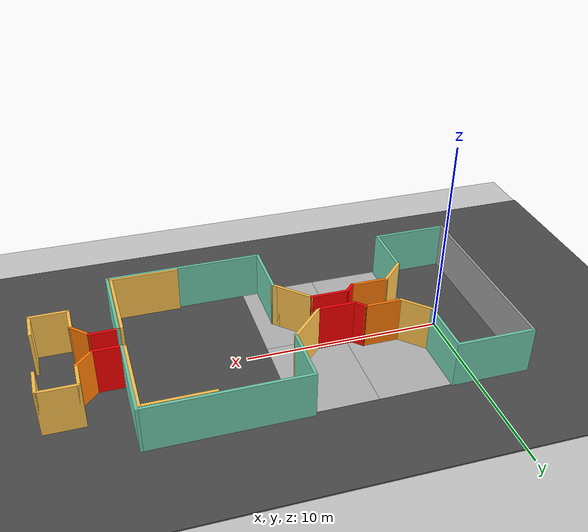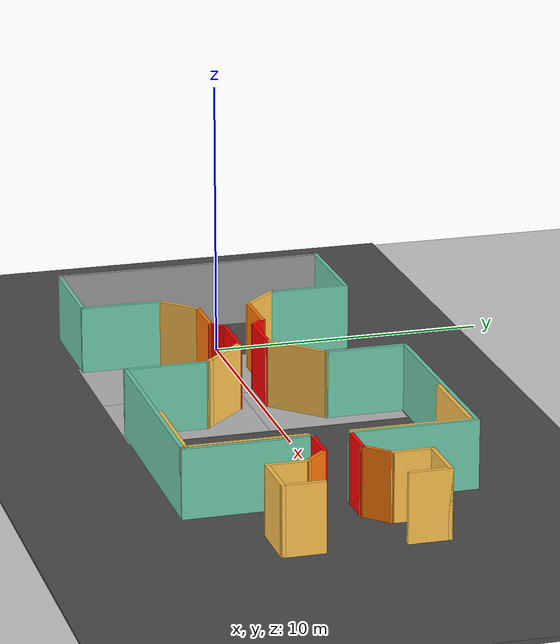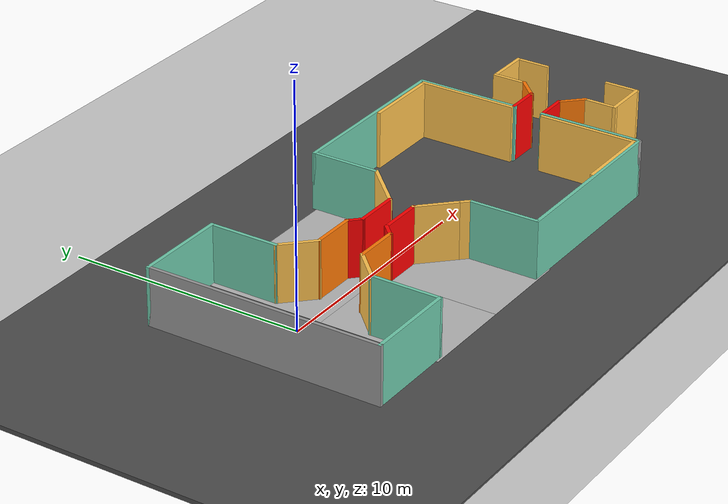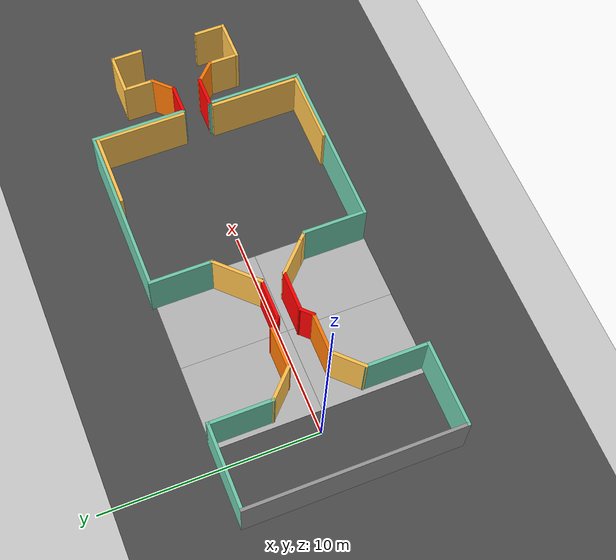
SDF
<sdf version="1.6">
 <world name="default">
  <light name="sun" type="directional">
   <pose>0 0 10 0 -0 0</pose>
   <diffuse>0.8 0.8 0.8 1</diffuse>
   <specular>0.2 0.2 0.2 1</specular>
   <attenuation>
    <range>1000</range>
    <constant>0.9</constant>
    <linear>0.01</linear>
    <quadratic>0.001</quadratic>
   </attenuation>
   <direction>-0.5 0.1 -0.9</direction>
  </light>
  <model name="ground_plane">
   <static>1</static>
   <link name="link">
    <collision name="collision">
     <geometry><plane><normal>0 0 1</normal><size>100 100</size></plane></geometry>
     <surface><friction><ode><mu>100</mu><mu2>50</mu2></ode></friction></surface>
    </collision>
    <visual name="visual">
     <cast_shadows>0</cast_shadows>
     <geometry><plane><normal>0 0 1</normal><size>100 100</size></plane></geometry>
     <material>
      <script><uri>file://media/materials/scripts/gazebo.material</uri><name>Gazebo/Grey</name></script>
     </material>
    </visual>
   </link>
  </model>
  <gravity>0 0 -9.8</gravity>
  <magnetic_field>6e-06 2.3e-05 -4.2e-05</magnetic_field>
  <atmosphere type="adiabatic"/>
  <physics name="default_physics" default="0" type="ode">
   <max_step_size>0.001</max_step_size>
   <real_time_factor>1</real_time_factor>
   <real_time_update_rate>1000</real_time_update_rate>
  </physics>
  <scene><ambient>0.4 0.4 0.4 1</ambient><background>0.7 0.7 0.7 1</background><shadows>1</shadows></scene>
  <spherical_coordinates>
   <surface_model>EARTH_WGS84</surface_model>
   <latitude_deg>0</latitude_deg>
   <longitude_deg>0</longitude_deg>
   <elevation>0</elevation>
   <heading_deg>0</heading_deg>
  </spherical_coordinates>
  <model name="exp1.sdf">
   <pose>8.65616 -0.294528 0 0 -0 0</pose>
   <link name="Wall_1">
    <collision name="Wall_1_Collision">
     <geometry><box><size>10 0.15 2.5</size></box></geometry>
     <pose>0 0 1.25 0 -0 0</pose>
    </collision>
    <visual name="Wall_1_Visual">
     <pose>0 0 1.25 0 -0 0</pose>
     <geometry><box><size>10 0.15 2.5</size></box></geometry>
     <material>
      <script><uri>file://media/materials/scripts/gazebo.material</uri><name>Gazebo/Grey</name></script>
      <ambient>1 1 1 1</ambient>
     </material>
     <meta><layer>0</layer></meta>
    </visual>
    <pose>-11.2976 -0.037824 0 0 0 -1.5708</pose>
   </link>
   <link name="Wall_10">
    <collision name="Wall_10_Collision">
     <geometry><box><size>3.03042 0.15 2.5</size></box></geometry>
     <pose>0 0 1.25 0 -0 0</pose>
    </collision>
    <visual name="Wall_10_Visual">
     <pose>0 0 1.25 0 -0 0</pose>
     <geometry><box><size>3.03042 0.15 2.5</size></box></geometry>
     <material>
      <script><uri>file://media/materials/scripts/gazebo.material</uri><name>Gazebo/Grey</name></script>
      <ambient>0.435294 0.796078 0.67451 1</ambient>
     </material>
     <meta><layer>0</layer></meta>
    </visual>
    <pose>-0.636307 -3.55303 0 0 0 -1.5708</pose>
   </link>
   <link name="Wall_12">
    <collision name="Wall_12_Collision">
     <geometry><box><size>4 0.15 2.5</size></box></geometry>
     <pose>0 0 1.25 0 -0 0</pose>
    </collision>
    <visual name="Wall_12_Visual">
     <pose>0 0 1.25 0 -0 0</pose>
     <geometry><box><size>4 0.15 2.5</size></box></geometry>
     <material>
      <script><uri>file://media/materials/scripts/gazebo.material</uri><name>Gazebo/Grey</name></script>
      <ambient>0.435294 0.796078 0.67451 1</ambient>
     </material>
     <meta><layer>0</layer></meta>
    </visual>
    <pose>-9.37258 4.88718 0 0 -0 0</pose>
   </link>
   <link name="Wall_13">
    <collision name="Wall_13_Collision">
     <geometry><box><size>3 0.15 2.5</size></box></geometry>
     <pose>0 0 1.25 0 -0 0</pose>
    </collision>
    <visual name="Wall_13_Visual">
     <pose>0 0 1.25 0 -0 0</pose>
     <geometry><box><size>3 0.15 2.5</size></box></geometry>
     <material>
      <script><uri>file://media/materials/scripts/gazebo.material</uri><name>Gazebo/Grey</name></script>
      <ambient>0.435294 0.796078 0.67451 1</ambient>
     </material>
     <meta><layer>0</layer></meta>
    </visual>
    <pose>-7.44758 3.46218 0 0 0 -1.5708</pose>
   </link>
   <link name="Wall_14">
    <collision name="Wall_14_Collision">
     <geometry><box><size>1.75 0.15 2.5</size></box></geometry>
     <pose>0 0 1.25 0 -0 0</pose>
    </collision>
    <visual name="Wall_14_Visual">
     <pose>0 0 1.25 0 -0 0</pose>
     <geometry><box><size>1.75 0.15 2.5</size></box></geometry>
     <material>
      <script><uri>file://media/materials/scripts/gazebo.material</uri><name>Gazebo/Grey</name></script>
      <ambient>1 0.764706 0.305882 1</ambient>
     </material>
     <meta><layer>0</layer></meta>
    </visual>
    <pose>-6.88189 1.47149 0 0 0 -0.785398</pose>
   </link>
   <link name="Wall_15">
    <collision name="Wall_15_Collision">
     <geometry><box><size>2 0.15 2.5</size></box></geometry>
     <pose>0 0 1.25 0 -0 0</pose>
    </collision>
    <visual name="Wall_15_Visual">
     <pose>0 0 1.25 0 -0 0</pose>
     <geometry><box><size>2 0.15 2.5</size></box></geometry>
     <material>
      <script><uri>file://media/materials/scripts/gazebo.material</uri><name>Gazebo/Grey</name></script>
      <ambient>0.996078 0.47451 0.0196078 1</ambient>
     </material>
     <meta><layer>0</layer></meta>
    </visual>
    <pose>-5.39121 0.905805 0 0 -0 0</pose>
   </link>
   <link name="Wall_16">
    <collision name="Wall_16_Collision">
     <geometry><box><size>0.75 0.15 2.5</size></box></geometry>
     <pose>0 0 1.25 0 -0 0</pose>
    </collision>
    <visual name="Wall_16_Visual">
     <pose>0 0 1.25 0 -0 0</pose>
     <geometry><box><size>0.75 0.15 2.5</size></box></geometry>
     <material>
      <script><uri>file://media/materials/scripts/gazebo.material</uri><name>Gazebo/Grey</name></script>
      <ambient>1 0 0 1</ambient>
     </material>
     <meta><layer>0</layer></meta>
    </visual>
    <pose>-4.25407 0.693673 0 0 0 -0.785398</pose>
   </link>
   <link name="Wall_17">
    <collision name="Wall_17_Collision">
     <geometry><box><size>2 0.15 2.5</size></box></geometry>
     <pose>0 0 1.25 0 -0 0</pose>
    </collision>
    <visual name="Wall_17_Visual">
     <pose>0 0 1.25 0 -0 0</pose>
     <geometry><box><size>2 0.15 2.5</size></box></geometry>
     <material>
      <script><uri>file://media/materials/scripts/gazebo.material</uri><name>Gazebo/Grey</name></script>
      <ambient>1 0 0 1</ambient>
     </material>
     <meta><layer>0</layer></meta>
    </visual>
    <pose>-3.11694 0.481541 0 0 -0 0</pose>
   </link>
   <link name="Wall_2">
    <collision name="Wall_2_Collision">
     <geometry><box><size>4 0.15 2.5</size></box></geometry>
     <pose>0 0 1.25 0 -0 0</pose>
    </collision>
    <visual name="Wall_2_Visual">
     <pose>0 0 1.25 0 -0 0</pose>
     <geometry><box><size>4 0.15 2.5</size></box></geometry>
     <material>
      <script><uri>file://media/materials/scripts/gazebo.material</uri><name>Gazebo/Grey</name></script>
      <ambient>0.435294 0.796078 0.67451 1</ambient>
     </material>
     <meta><layer>0</layer></meta>
    </visual>
    <pose>-9.37258 -4.96282 0 0 -0 0</pose>
   </link>
   <link name="Wall_20">
    <collision name="Wall_20_Collision">
     <geometry><box><size>2.5 0.15 2.5</size></box></geometry>
     <pose>0 0 1.25 0 -0 0</pose>
    </collision>
    <visual name="Wall_20_Visual">
     <pose>0 0 1.25 0 -0 0</pose>
     <geometry><box><size>2.5 0.15 2.5</size></box></geometry>
     <material>
      <script><uri>file://media/materials/scripts/gazebo.material</uri><name>Gazebo/Grey</name></script>
      <ambient>1 0.764706 0.305882 1</ambient>
     </material>
     <meta><layer>0</layer></meta>
    </visual>
    <pose>-1.36109 1.31239 0 0 -0 0.785398</pose>
   </link>
   <link name="Wall_21">
    <collision name="Wall_21_Collision">
     <geometry><box><size>3 0.15 2.5</size></box></geometry>
     <pose>0 0 1.25 0 -0 0</pose>
    </collision>
    <visual name="Wall_21_Visual">
     <pose>0 0 1.25 0 -0 0</pose>
     <geometry><box><size>3 0.15 2.5</size></box></geometry>
     <material>
      <script><uri>file://media/materials/scripts/gazebo.material</uri><name>Gazebo/Grey</name></script>
      <ambient>0.435294 0.796078 0.67451 1</ambient>
     </material>
     <meta><layer>0</layer></meta>
    </visual>
    <pose>-0.53024 3.56824 0 0 -0 1.5708</pose>
   </link>
   <link name="Wall_22">
    <collision name="Wall_22_Collision">
     <geometry><box><size>8 0.15 2.5</size></box></geometry>
     <pose>0 0 1.25 0 -0 0</pose>
    </collision>
    <visual name="Wall_22_Visual">
     <pose>0 0 1.25 0 -0 0</pose>
     <geometry><box><size>8 0.15 2.5</size></box></geometry>
     <material>
      <script><uri>file://media/materials/scripts/gazebo.material</uri><name>Gazebo/Grey</name></script>
      <ambient>0.435294 0.796078 0.67451 1</ambient>
     </material>
     <meta><layer>0</layer></meta>
    </visual>
    <pose>3.39476 4.99324 0 0 -0 0</pose>
   </link>
   <link name="Wall_23">
    <collision name="Wall_23_Collision">
     <geometry><box><size>4.5 0.15 2.5</size></box></geometry>
     <pose>0 0 1.25 0 -0 0</pose>
    </collision>
    <visual name="Wall_23_Visual">
     <pose>0 0 1.25 0 -0 0</pose>
     <geometry><box><size>4.5 0.15 2.5</size></box></geometry>
     <material>
      <script><uri>file://media/materials/scripts/gazebo.material</uri><name>Gazebo/Grey</name></script>
      <ambient>0.435294 0.796078 0.67451 1</ambient>
     </material>
     <meta><layer>0</layer></meta>
    </visual>
    <pose>7.31976 2.81824 0 0 0 -1.5708</pose>
   </link>
   <link name="Wall_24">
    <collision name="Wall_24_Collision">
     <geometry><box><size>1.5 0.15 2.5</size></box></geometry>
     <pose>0 0 1.25 0 -0 0</pose>
    </collision>
    <visual name="Wall_24_Visual">
     <pose>0 0 1.25 0 -0 0</pose>
     <geometry><box><size>1.5 0.15 2.5</size></box></geometry>
     <material>
      <script><uri>file://media/materials/scripts/gazebo.material</uri><name>Gazebo/Grey</name></script>
      <ambient>1 0 0 1</ambient>
     </material>
     <meta><layer>0</layer></meta>
    </visual>
    <pose>7.99476 0.643242 0 0 -0 0</pose>
   </link>
   <link name="Wall_25">
    <collision name="Wall_25_Collision">
     <geometry><box><size>1.25 0.15 2.5</size></box></geometry>
     <pose>0 0 1.25 0 -0 0</pose>
    </collision>
    <visual name="Wall_25_Visual">
     <pose>0 0 1.25 0 -0 0</pose>
     <geometry><box><size>1.25 0.15 2.5</size></box></geometry>
     <material>
      <script><uri>file://media/materials/scripts/gazebo.material</uri><name>Gazebo/Grey</name></script>
      <ambient>0.996078 0.47451 0.0196078 1</ambient>
     </material>
     <meta><layer>0</layer></meta>
    </visual>
    <pose>9.05867 1.03215 0 0 -0 0.785398</pose>
   </link>
   <link name="Wall_26">
    <collision name="Wall_26_Collision">
     <geometry><box><size>1.5 0.15 2.5</size></box></geometry>
     <pose>0 0 1.25 0 -0 0</pose>
    </collision>
    <visual name="Wall_26_Visual">
     <pose>0 0 1.25 0 -0 0</pose>
     <geometry><box><size>1.5 0.15 2.5</size></box></geometry>
     <material>
      <script><uri>file://media/materials/scripts/gazebo.material</uri><name>Gazebo/Grey</name></script>
      <ambient>1 0.764706 0.305882 1</ambient>
     </material>
     <meta><layer>0</layer></meta>
    </visual>
    <pose>9.44758 2.09606 0 0 -0 1.5708</pose>
   </link>
   <link name="Wall_27">
    <collision name="Wall_27_Collision">
     <geometry><box><size>2 0.15 2.5</size></box></geometry>
     <pose>0 0 1.25 0 -0 0</pose>
    </collision>
    <visual name="Wall_27_Visual">
     <pose>0 0 1.25 0 -0 0</pose>
     <geometry><box><size>2 0.15 2.5</size></box></geometry>
     <material>
      <script><uri>file://media/materials/scripts/gazebo.material</uri><name>Gazebo/Grey</name></script>
      <ambient>1 0.764706 0.305882 1</ambient>
     </material>
     <meta><layer>0</layer></meta>
    </visual>
    <pose>10.3726 2.77106 0 0 -0 0</pose>
   </link>
   <link name="Wall_3">
    <collision name="Wall_3_Collision">
     <geometry><box><size>3 0.15 2.5</size></box></geometry>
     <pose>0 0 1.25 0 -0 0</pose>
    </collision>
    <visual name="Wall_3_Visual">
     <pose>0 0 1.25 0 -0 0</pose>
     <geometry><box><size>3 0.15 2.5</size></box></geometry>
     <material>
      <script><uri>file://media/materials/scripts/gazebo.material</uri><name>Gazebo/Grey</name></script>
      <ambient>0.435294 0.796078 0.67451 1</ambient>
     </material>
     <meta><layer>0</layer></meta>
    </visual>
    <pose>-7.44758 -3.53782 0 0 -0 1.5708</pose>
   </link>
   <link name="Wall_4">
    <collision name="Wall_4_Collision">
     <geometry><box><size>1.75 0.15 2.5</size></box></geometry>
     <pose>0 0 1.25 0 -0 0</pose>
    </collision>
    <visual name="Wall_4_Visual">
     <pose>0 0 1.25 0 -0 0</pose>
     <geometry><box><size>1.75 0.15 2.5</size></box></geometry>
     <material>
      <script><uri>file://media/materials/scripts/gazebo.material</uri><name>Gazebo/Grey</name></script>
      <ambient>1 0.764706 0.305882 1</ambient>
     </material>
     <meta><layer>0</layer></meta>
    </visual>
    <pose>-6.88189 -1.54714 0 0 -0 0.785398</pose>
   </link>
   <link name="Wall_41">
    <collision name="Wall_41_Collision">
     <geometry><box><size>8 0.15 2.5</size></box></geometry>
     <pose>0 0 1.25 0 -0 0</pose>
    </collision>
    <visual name="Wall_41_Visual">
     <pose>0 0 1.25 0 -0 0</pose>
     <geometry><box><size>8 0.15 2.5</size></box></geometry>
     <material>
      <script><uri>file://media/materials/scripts/gazebo.material</uri><name>Gazebo/Grey</name></script>
      <ambient>0.435294 0.796078 0.67451 1</ambient>
     </material>
     <meta><layer>0</layer></meta>
    </visual>
    <pose>3.28869 -4.99324 0 0 -0 0</pose>
   </link>
   <link name="Wall_42">
    <collision name="Wall_42_Collision">
     <geometry><box><size>0.25 0.15 2.5</size></box></geometry>
     <pose>0 0 1.25 0 -0 0</pose>
    </collision>
    <visual name="Wall_42_Visual">
     <pose>0 0 1.25 0 -0 0</pose>
     <geometry><box><size>0.25 0.15 2.5</size></box></geometry>
     <material>
      <script><uri>file://media/materials/scripts/gazebo.material</uri><name>Gazebo/Grey</name></script>
      <ambient>1 1 1 1</ambient>
     </material>
     <meta><layer>0</layer></meta>
    </visual>
    <pose>7.26369 -4.99324 0 0 -0 0</pose>
   </link>
   <link name="Wall_43">
    <collision name="Wall_43_Collision">
     <geometry><box><size>4.5 0.15 2.5</size></box></geometry>
     <pose>0 0 1.25 0 -0 0</pose>
    </collision>
    <visual name="Wall_43_Visual">
     <pose>0 0 1.25 0 -0 0</pose>
     <geometry><box><size>4.5 0.15 2.5</size></box></geometry>
     <material>
      <script><uri>file://media/materials/scripts/gazebo.material</uri><name>Gazebo/Grey</name></script>
      <ambient>0.435294 0.796078 0.67451 1</ambient>
     </material>
     <meta><layer>0</layer></meta>
    </visual>
    <pose>7.31369 -2.81824 0 0 -0 1.5708</pose>
   </link>
   <link name="Wall_44">
    <collision name="Wall_44_Collision">
     <geometry><box><size>1.5 0.15 2.5</size></box></geometry>
     <pose>0 0 1.25 0 -0 0</pose>
    </collision>
    <visual name="Wall_44_Visual">
     <pose>0 0 1.25 0 -0 0</pose>
     <geometry><box><size>1.5 0.15 2.5</size></box></geometry>
     <material>
      <script><uri>file://media/materials/scripts/gazebo.material</uri><name>Gazebo/Grey</name></script>
      <ambient>1 0 0 1</ambient>
     </material>
     <meta><layer>0</layer></meta>
    </visual>
    <pose>7.98869 -0.643242 0 0 -0 0</pose>
   </link>
   <link name="Wall_47">
    <collision name="Wall_47_Collision">
     <geometry><box><size>1.25 0.15 2.5</size></box></geometry>
     <pose>0 0 1.25 0 -0 0</pose>
    </collision>
    <visual name="Wall_47_Visual">
     <pose>0 0 1.25 0 -0 0</pose>
     <geometry><box><size>1.25 0.15 2.5</size></box></geometry>
     <material>
      <script><uri>file://media/materials/scripts/gazebo.material</uri><name>Gazebo/Grey</name></script>
      <ambient>0.996078 0.47451 0.0196078 1</ambient>
     </material>
     <meta><layer>0</layer></meta>
    </visual>
    <pose>9.0526 -1.03215 0 0 0 -0.785398</pose>
   </link>
   <link name="Wall_5">
    <collision name="Wall_5_Collision">
     <geometry><box><size>2 0.15 2.5</size></box></geometry>
     <pose>0 0 1.25 0 -0 0</pose>
    </collision>
    <visual name="Wall_5_Visual">
     <pose>0 0 1.25 0 -0 0</pose>
     <geometry><box><size>2 0.15 2.5</size></box></geometry>
     <material>
      <script><uri>file://media/materials/scripts/gazebo.material</uri><name>Gazebo/Grey</name></script>
      <ambient>0.996078 0.47451 0.0196078 1</ambient>
     </material>
     <meta><layer>0</layer></meta>
    </visual>
    <pose>-5.39121 -0.981453 0 0 -0 0</pose>
   </link>
   <link name="Wall_56">
    <collision name="Wall_56_Collision">
     <geometry><box><size>1.5 0.15 2.5</size></box></geometry>
     <pose>0 0 1.25 0 -0 0</pose>
    </collision>
    <visual name="Wall_56_Visual">
     <pose>0 0 1.25 0 -0 0</pose>
     <geometry><box><size>1.5 0.15 2.5</size></box></geometry>
     <material>
      <script><uri>file://media/materials/scripts/gazebo.material</uri><name>Gazebo/Grey</name></script>
      <ambient>1 0.764706 0.305882 1</ambient>
     </material>
     <meta><layer>0</layer></meta>
    </visual>
    <pose>11.2976 2.09606 0 0 0 -1.5708</pose>
   </link>
   <link name="Wall_58">
    <collision name="Wall_58_Collision">
     <geometry><box><size>1.5 0.15 2.5</size></box></geometry>
     <pose>0 0 1.25 0 -0 0</pose>
    </collision>
    <visual name="Wall_58_Visual">
     <pose>0 0 1.25 0 -0 0</pose>
     <geometry><box><size>1.5 0.15 2.5</size></box></geometry>
     <material>
      <script><uri>file://media/materials/scripts/gazebo.material</uri><name>Gazebo/Grey</name></script>
      <ambient>1 0.764706 0.305882 1</ambient>
     </material>
     <meta><layer>0</layer></meta>
    </visual>
    <pose>9.44151 -2.09606 0 0 0 -1.5708</pose>
   </link>
   <link name="Wall_59">
    <collision name="Wall_59_Collision">
     <geometry><box><size>2 0.15 2.5</size></box></geometry>
     <pose>0 0 1.25 0 -0 0</pose>
    </collision>
    <visual name="Wall_59_Visual">
     <pose>0 0 1.25 0 -0 0</pose>
     <geometry><box><size>2 0.15 2.5</size></box></geometry>
     <material>
      <script><uri>file://media/materials/scripts/gazebo.material</uri><name>Gazebo/Grey</name></script>
      <ambient>1 0.764706 0.305882 1</ambient>
     </material>
     <meta><layer>0</layer></meta>
    </visual>
    <pose>10.3665 -2.77106 0 0 -0 0</pose>
   </link>
   <link name="Wall_6">
    <collision name="Wall_6_Collision">
     <geometry><box><size>0.75 0.15 2.5</size></box></geometry>
     <pose>0 0 1.25 0 -0 0</pose>
    </collision>
    <visual name="Wall_6_Visual">
     <pose>0 0 1.25 0 -0 0</pose>
     <geometry><box><size>0.75 0.15 2.5</size></box></geometry>
     <material>
      <script><uri>file://media/materials/scripts/gazebo.material</uri><name>Gazebo/Grey</name></script>
      <ambient>1 0 0 1</ambient>
     </material>
     <meta><layer>0</layer></meta>
    </visual>
    <pose>-4.25407 -0.769321 0 0 -0 0.785398</pose>
   </link>
   <link name="Wall_60">
    <collision name="Wall_60_Collision">
     <geometry><box><size>1.5 0.15 2.5</size></box></geometry>
     <pose>0 0 1.25 0 -0 0</pose>
    </collision>
    <visual name="Wall_60_Visual">
     <pose>0 0 1.25 0 -0 0</pose>
     <geometry><box><size>1.5 0.15 2.5</size></box></geometry>
     <material>
      <script><uri>file://media/materials/scripts/gazebo.material</uri><name>Gazebo/Grey</name></script>
      <ambient>1 0.764706 0.305882 1</ambient>
     </material>
     <meta><layer>0</layer></meta>
    </visual>
    <pose>11.2915 -2.09606 0 0 -0 1.5708</pose>
   </link>
   <link name="Wall_62">
    <collision name="Wall_62_Collision">
     <geometry><box><size>3.5 0.15 2.5</size></box></geometry>
     <pose>0 0 1.25 0 -0 0</pose>
    </collision>
    <visual name="Wall_62_Visual">
     <pose>0 0 1.25 0 -0 0</pose>
     <geometry><box><size>3.5 0.15 2.5</size></box></geometry>
     <material>
      <script><uri>file://media/materials/scripts/gazebo.material</uri><name>Gazebo/Grey</name></script>
      <ambient>1 0.764706 0.305882 1</ambient>
     </material>
     <meta><layer>0</layer></meta>
    </visual>
    <pose>5.50551 4.82319 0 0 -0 0</pose>
   </link>
   <link name="Wall_63">
    <collision name="Wall_63_Collision">
     <geometry><box><size>4.25 0.15 2.5</size></box></geometry>
     <pose>0 0 1.25 0 -0 0</pose>
    </collision>
    <visual name="Wall_63_Visual">
     <pose>0 0 1.25 0 -0 0</pose>
     <geometry><box><size>4.25 0.15 2.5</size></box></geometry>
     <material>
      <script><uri>file://media/materials/scripts/gazebo.material</uri><name>Gazebo/Grey</name></script>
      <ambient>1 0.764706 0.305882 1</ambient>
     </material>
     <meta><layer>0</layer></meta>
    </visual>
    <pose>7.18051 2.77319 0 0 0 -1.5708</pose>
   </link>
   <link name="Wall_65">
    <collision name="Wall_65_Collision">
     <geometry><box><size>3.5 0.15 2.5</size></box></geometry>
     <pose>0 0 1.25 0 -0 0</pose>
    </collision>
    <visual name="Wall_65_Visual">
     <pose>0 0 1.25 0 -0 0</pose>
     <geometry><box><size>3.5 0.15 2.5</size></box></geometry>
     <material>
      <script><uri>file://media/materials/scripts/gazebo.material</uri><name>Gazebo/Grey</name></script>
      <ambient>1 0.764706 0.305882 1</ambient>
     </material>
     <meta><layer>0</layer></meta>
    </visual>
    <pose>5.45925 -4.86854 0 0 -0 0</pose>
   </link>
   <link name="Wall_66">
    <collision name="Wall_66_Collision">
     <geometry><box><size>4.25 0.15 2.5</size></box></geometry>
     <pose>0 0 1.25 0 -0 0</pose>
    </collision>
    <visual name="Wall_66_Visual">
     <pose>0 0 1.25 0 -0 0</pose>
     <geometry><box><size>4.25 0.15 2.5</size></box></geometry>
     <material>
      <script><uri>file://media/materials/scripts/gazebo.material</uri><name>Gazebo/Grey</name></script>
      <ambient>1 0.764706 0.305882 1</ambient>
     </material>
     <meta><layer>0</layer></meta>
    </visual>
    <pose>7.13425 -2.81854 0 0 -0 1.5708</pose>
   </link>
   <link name="Wall_7">
    <collision name="Wall_7_Collision">
     <geometry><box><size>2 0.15 2.5</size></box></geometry>
     <pose>0 0 1.25 0 -0 0</pose>
    </collision>
    <visual name="Wall_7_Visual">
     <pose>0 0 1.25 0 -0 0</pose>
     <geometry><box><size>2 0.15 2.5</size></box></geometry>
     <material>
      <script><uri>file://media/materials/scripts/gazebo.material</uri><name>Gazebo/Grey</name></script>
      <ambient>1 0 0 1</ambient>
     </material>
     <meta><layer>0</layer></meta>
    </visual>
    <pose>-3.11694 -0.557189 0 0 -0 0</pose>
   </link>
   <link name="Wall_8">
    <collision name="Wall_8_Collision">
     <geometry><box><size>2 0.15 2.5</size></box></geometry>
     <pose>0 0 1.25 0 -0 0</pose>
    </collision>
    <visual name="Wall_8_Visual">
     <pose>0 0 1.25 0 -0 0</pose>
     <geometry><box><size>2 0.15 2.5</size></box></geometry>
     <material>
      <script><uri>file://media/materials/scripts/gazebo.material</uri><name>Gazebo/Grey</name></script>
      <ambient>1 0.764706 0.305882 1</ambient>
     </material>
     <meta><layer>0</layer></meta>
    </visual>
    <pose>-1.53787 -1.21126 0 0 0 -0.785398</pose>
   </link>
   <link name="Wall_9">
    <collision name="Wall_9_Collision">
     <geometry><box><size>0.5 0.15 2.5</size></box></geometry>
     <pose>0 0 1.25 0 -0 0</pose>
    </collision>
    <visual name="Wall_9_Visual">
     <pose>0 0 1.25 0 -0 0</pose>
     <geometry><box><size>0.5 0.15 2.5</size></box></geometry>
     <material>
      <script><uri>file://media/materials/scripts/gazebo.material</uri><name>Gazebo/Grey</name></script>
      <ambient>1 0.764706 0.305882 1</ambient>
     </material>
     <meta><layer>0</layer></meta>
    </visual>
    <pose>-0.76005 -1.98908 0 0 0 -0.785398</pose>
   </link>
   <static>1</static>
  </model>
  <model name="mud_box">
   <static>1</static>
   <link name="link">
    <collision name="collision"><geometry><box><size>8 10 0.2</size></box></geometry></collision>
    <visual name="visual_1">
     <pose>-2 2.5 0 0 -0 0</pose>
     <cast_shadows>0</cast_shadows>
     <geometry><box><size>4 5 0.2</size></box></geometry>
     <material>
      <script>
       <uri>model://mud_box/materials/scripts</uri>
       <uri>model://mud_box/materials/textures</uri>
       <name>vrc/mud</name>
      </script>
     </material>
    </visual>
    <visual name="visual_2">
     <pose>2 2.5 0 0 -0 0</pose>
     <cast_shadows>0</cast_shadows>
     <geometry><box><size>4 5 0.2</size></box></geometry>
     <material>
      <script>
       <uri>model://mud_box/materials/scripts</uri>
       <uri>model://mud_box/materials/textures</uri>
       <name>vrc/mud</name>
      </script>
     </material>
    </visual>
    <visual name="visual_3">
     <pose>2 -2.5 0 0 -0 0</pose>
     <cast_shadows>0</cast_shadows>
     <geometry><box><size>4 5 0.2</size></box></geometry>
     <material>
      <script>
       <uri>model://mud_box/materials/scripts</uri>
       <uri>model://mud_box/materials/textures</uri>
       <name>vrc/mud</name>
      </script>
     </material>
    </visual>
    <visual name="visual_4">
     <pose>-2 -2.5 0 0 -0 0</pose>
     <cast_shadows>0</cast_shadows>
     <geometry><box><size>4 5 0.2</size></box></geometry>
     <material>
      <script>
       <uri>model://mud_box/materials/scripts</uri>
       <uri>model://mud_box/materials/textures</uri>
       <name>vrc/mud</name>
      </script>
     </material>
    </visual>
   </link>
   <pose>4.90232 -0.417136 -0.029278 0 -0 0</pose>
  </model>
  <model name="asphalt_plane">
   <static>1</static>
   <link name="link">
    <collision name="collision"><geometry><box><size>56.2282 20 0.184078</size></box></geometry></collision>
    <visual name="visual">
     <cast_shadows>0</cast_shadows>
     <geometry><box><size>56.2282 20 0.184078</size></box></geometry>
     <material>
      <script>
       <uri>model://asphalt_plane/materials/scripts</uri>
       <uri>model://asphalt_plane/materials/textures</uri>
       <name>vrc/asphalt</name>
      </script>
     </material>
    </visual>
   </link>
   <pose>16.193 -0.680015 -0.03149 0 -0 0</pose>
  </model>
 </world>
</sdf>
